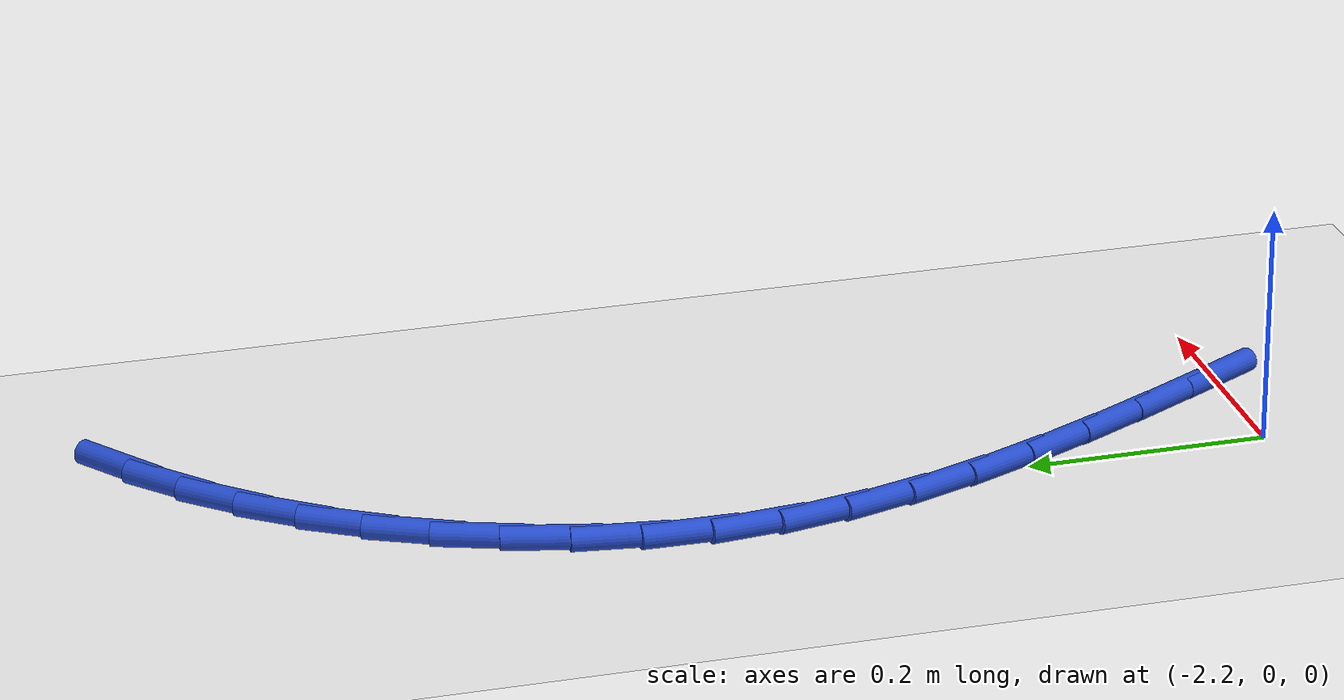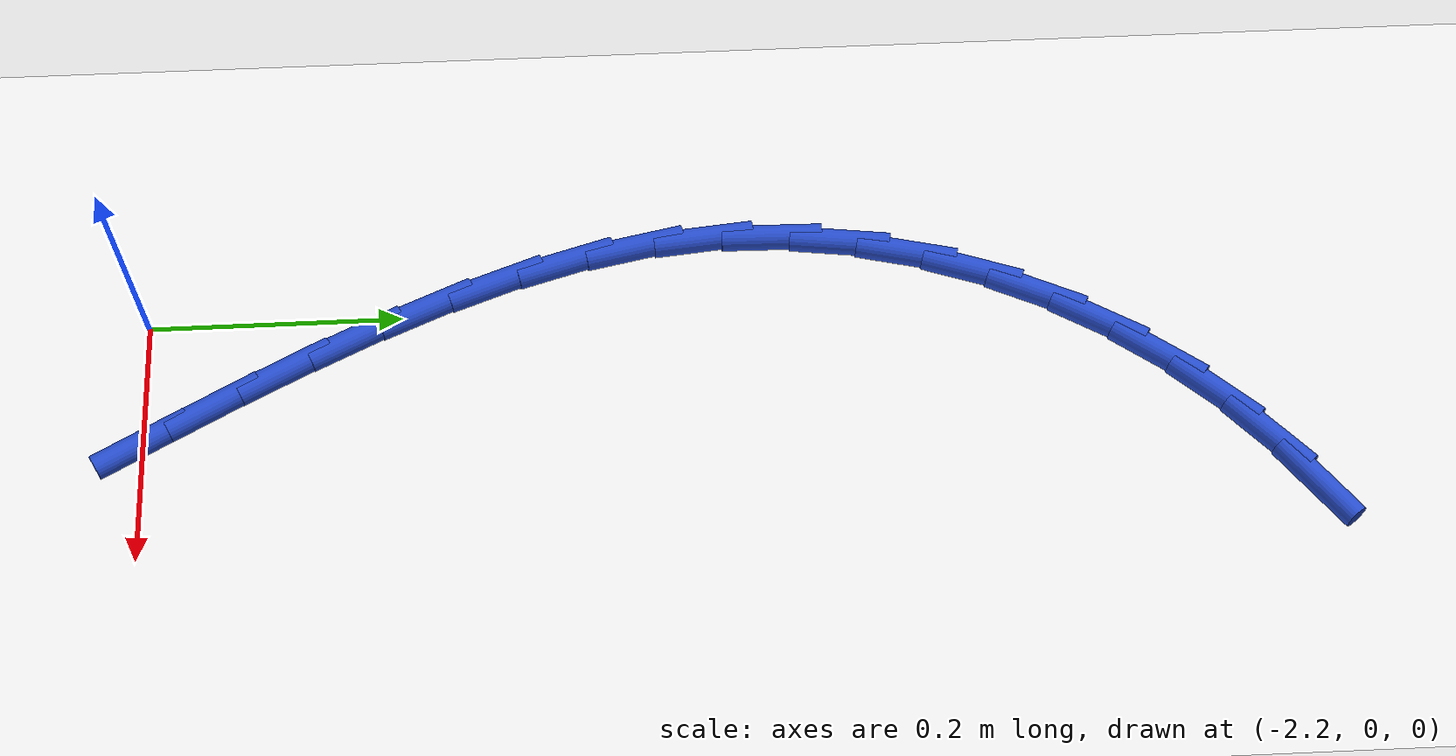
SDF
<sdf version="1.6">
 <world name="default">
  <model name="ground_plane">
   <static>1</static>
   <link name="link">
    <collision name="collision">
     <geometry><plane><normal>0 0 1</normal><size>100 100</size></plane></geometry>
     <surface><friction><ode><mu>100</mu><mu2>50</mu2></ode></friction></surface>
    </collision>
    <visual name="visual">
     <cast_shadows>0</cast_shadows>
     <geometry><plane><normal>0 0 1</normal><size>100 100</size></plane></geometry>
     <material>
      <script><uri>file://media/materials/scripts/gazebo.material</uri><name>Gazebo/WhiteGlow</name></script>
     </material>
    </visual>
   </link>
  </model>
  <model name="line">
   <link name="link_56">
    <pose>-2.022753228169089 0.9019436152568371 0.01 0 1.57 0.6545374058064372</pose>
    <collision name="collision">
     <geometry><cylinder><radius>0.01</radius><length>0.08</length></cylinder></geometry>
    </collision>
    <visual name="visual">
     <material>
      <script><name>Gazebo/Blue</name><uri>file://media/materials/scripts/gazebo.material</uri></script>
     </material>
     <geometry><cylinder><radius>0.01</radius><length>0.08</length></cylinder></geometry>
    </visual>
   </link>
   <link name="link_57">
    <pose>-2.064736371474297 0.8697262191346495 0.01 0 1.57 0.7544801730021004</pose>
    <collision name="collision">
     <geometry><cylinder><radius>0.01</radius><length>0.08</length></cylinder></geometry>
    </collision>
    <visual name="visual">
     <material>
      <script><name>Gazebo/Blue</name><uri>file://media/materials/scripts/gazebo.material</uri></script>
     </material>
     <geometry><cylinder><radius>0.01</radius><length>0.08</length></cylinder></geometry>
    </visual>
   </link>
   <link name="link_58">
    <pose>-2.103519589529325 0.8332699949542457 0.01 0 1.57 0.8518880456477844</pose>
    <collision name="collision">
     <geometry><cylinder><radius>0.01</radius><length>0.08</length></cylinder></geometry>
    </collision>
    <visual name="visual">
     <material>
      <script><name>Gazebo/Blue</name><uri>file://media/materials/scripts/gazebo.material</uri></script>
     </material>
     <geometry><cylinder><radius>0.01</radius><length>0.08</length></cylinder></geometry>
    </visual>
   </link>
   <link name="link_59">
    <pose>-2.1387551025939016 0.793007197550972 0.01 0 1.57 0.9479619852513224</pose>
    <collision name="collision">
     <geometry><cylinder><radius>0.01</radius><length>0.08</length></cylinder></geometry>
    </collision>
    <visual name="visual">
     <material>
      <script><name>Gazebo/Blue</name><uri>file://media/materials/scripts/gazebo.material</uri></script>
     </material>
     <geometry><cylinder><radius>0.01</radius><length>0.08</length></cylinder></geometry>
    </visual>
   </link>
   <link name="link_60">
    <pose>-2.17009513092776 0.7493700817601747 0.01 0 1.57 1.043914846331548</pose>
    <collision name="collision">
     <geometry><cylinder><radius>0.01</radius><length>0.08</length></cylinder></geometry>
    </collision>
    <visual name="visual">
     <material>
      <script><name>Gazebo/Blue</name><uri>file://media/materials/scripts/gazebo.material</uri></script>
     </material>
     <geometry><cylinder><radius>0.01</radius><length>0.08</length></cylinder></geometry>
    </visual>
   </link>
   <link name="link_61">
    <pose>-2.1971918947906293 0.7027909024171997 0.01 0 1.57 1.140922942183426</pose>
    <collision name="collision">
     <geometry><cylinder><radius>0.01</radius><length>0.08</length></cylinder></geometry>
    </collision>
    <visual name="visual">
     <material>
      <script><name>Gazebo/Blue</name><uri>file://media/materials/scripts/gazebo.material</uri></script>
     </material>
     <geometry><cylinder><radius>0.01</radius><length>0.08</length></cylinder></geometry>
    </visual>
   </link>
   <link name="link_62">
    <pose>-2.2196976144422416 0.6537019143573927 0.01 0 1.57 1.2400778924280236</pose>
    <collision name="collision">
     <geometry><cylinder><radius>0.01</radius><length>0.08</length></cylinder></geometry>
    </collision>
    <visual name="visual">
     <material>
      <script><name>Gazebo/Blue</name><uri>file://media/materials/scripts/gazebo.material</uri></script>
     </material>
     <geometry><cylinder><radius>0.01</radius><length>0.08</length></cylinder></geometry>
    </visual>
   </link>
   <link name="link_63">
    <pose>-2.237264510142325 0.6025353724161009 0.01 0 1.57 1.3423271985468213</pose>
    <collision name="collision">
     <geometry><cylinder><radius>0.01</radius><length>0.08</length></cylinder></geometry>
    </collision>
    <visual name="visual">
     <material>
      <script><name>Gazebo/Blue</name><uri>file://media/materials/scripts/gazebo.material</uri></script>
     </material>
     <geometry><cylinder><radius>0.01</radius><length>0.08</length></cylinder></geometry>
    </visual>
   </link>
   <link name="link_64">
    <pose>-2.249544802150613 0.5497235314286699 0.01 0 1.57 1.4483955883428854</pose>
    <collision name="collision">
     <geometry><cylinder><radius>0.01</radius><length>0.08</length></cylinder></geometry>
    </collision>
    <visual name="visual">
     <material>
      <script><name>Gazebo/Blue</name><uri>file://media/materials/scripts/gazebo.material</uri></script>
     </material>
     <geometry><cylinder><radius>0.01</radius><length>0.08</length></cylinder></geometry>
    </visual>
   </link>
   <link name="link_65">
    <pose>-2.256190710726834 0.49569864623044635 0.01 0 1.57 1.5586860305419754</pose>
    <collision name="collision">
     <geometry><cylinder><radius>0.01</radius><length>0.08</length></cylinder></geometry>
    </collision>
    <visual name="visual">
     <material>
      <script><name>Gazebo/Blue</name><uri>file://media/materials/scripts/gazebo.material</uri></script>
     </material>
     <geometry><cylinder><radius>0.01</radius><length>0.08</length></cylinder></geometry>
    </visual>
   </link>
   <link name="link_66">
    <pose>-2.2568544561307196 0.44089297165677593 0.01 0 1.57 -1.4698549438892863</pose>
    <collision name="collision">
     <geometry><cylinder><radius>0.01</radius><length>0.08</length></cylinder></geometry>
    </collision>
    <visual name="visual">
     <material>
      <script><name>Gazebo/Blue</name><uri>file://media/materials/scripts/gazebo.material</uri></script>
     </material>
     <geometry><cylinder><radius>0.01</radius><length>0.08</length></cylinder></geometry>
    </visual>
   </link>
   <link name="link_67">
    <pose>-2.2512659830111943 0.3857175873614582 0.01 0 1.57 -1.3674488302272605</pose>
    <collision name="collision">
     <geometry><cylinder><radius>0.01</radius><length>0.08</length></cylinder></geometry>
    </collision>
    <visual name="visual">
     <material>
      <script><name>Gazebo/Blue</name><uri>file://media/materials/scripts/gazebo.material</uri></script>
     </material>
     <geometry><cylinder><radius>0.01</radius><length>0.08</length></cylinder></geometry>
    </visual>
   </link>
   <link name="link_68">
    <pose>-2.239858009795903 0.33039210977156397 0.01 0 1.57 -1.2824223929628582</pose>
    <collision name="collision">
     <geometry><cylinder><radius>0.01</radius><length>0.08</length></cylinder></geometry>
    </collision>
    <visual name="visual">
     <material>
      <script><name>Gazebo/Blue</name><uri>file://media/materials/scripts/gazebo.material</uri></script>
     </material>
     <geometry><cylinder><radius>0.01</radius><length>0.08</length></cylinder></geometry>
    </visual>
   </link>
   <link name="link_69">
    <pose>-2.2234365605597857 0.2750344521687827 0.01 0 1.57 -1.2136423868926478</pose>
    <collision name="collision">
     <geometry><cylinder><radius>0.01</radius><length>0.08</length></cylinder></geometry>
    </collision>
    <visual name="visual">
     <material>
      <script><name>Gazebo/Blue</name><uri>file://media/materials/scripts/gazebo.material</uri></script>
     </material>
     <geometry><cylinder><radius>0.01</radius><length>0.08</length></cylinder></geometry>
    </visual>
   </link>
   <link name="link_70">
    <pose>-2.202811103179798 0.21976158960764275 0.01 0 1.57 -1.1595082617390093</pose>
    <collision name="collision">
     <geometry><cylinder><radius>0.01</radius><length>0.08</length></cylinder></geometry>
    </collision>
    <visual name="visual">
     <material>
      <script><name>Gazebo/Blue</name><uri>file://media/materials/scripts/gazebo.material</uri></script>
     </material>
     <geometry><cylinder><radius>0.01</radius><length>0.08</length></cylinder></geometry>
    </visual>
   </link>
   <link name="link_71">
    <pose>-2.1787911055329037 0.16469049714267245 0.01 0 1.57 -1.1184788472070968</pose>
    <collision name="collision">
     <geometry><cylinder><radius>0.01</radius><length>0.08</length></cylinder></geometry>
    </collision>
    <visual name="visual">
     <material>
      <script><name>Gazebo/Blue</name><uri>file://media/materials/scripts/gazebo.material</uri></script>
     </material>
     <geometry><cylinder><radius>0.01</radius><length>0.08</length></cylinder></geometry>
    </visual>
   </link>
   <link name="link_72">
    <pose>-2.1521860354960616 0.10993814982840097 0.01 0 1.57 -1.0893077389851333</pose>
    <collision name="collision">
     <geometry><cylinder><radius>0.01</radius><length>0.08</length></cylinder></geometry>
    </collision>
    <visual name="visual">
     <material>
      <script><name>Gazebo/Blue</name><uri>file://media/materials/scripts/gazebo.material</uri></script>
     </material>
     <geometry><cylinder><radius>0.01</radius><length>0.08</length></cylinder></geometry>
    </visual>
   </link>
   <link name="link_73">
    <pose>-2.1238053609462315 0.05562152271935651 0.01 0 1.57 -1.0711481891812829</pose>
    <collision name="collision">
     <geometry><cylinder><radius>0.01</radius><length>0.08</length></cylinder></geometry>
    </collision>
    <visual name="visual">
     <material>
      <script><name>Gazebo/Blue</name><uri>file://media/materials/scripts/gazebo.material</uri></script>
     </material>
     <geometry><cylinder><radius>0.01</radius><length>0.08</length></cylinder></geometry>
    </visual>
   </link>
   <link name="link_74">
    <pose>-2.0944585497603736 0.0018575908700675 0.01 0 1.57 -1.063601859633921</pose>
    <collision name="collision">
     <geometry><cylinder><radius>0.01</radius><length>0.08</length></cylinder></geometry>
    </collision>
    <visual name="visual">
     <material>
      <script><name>Gazebo/Blue</name><uri>file://media/materials/scripts/gazebo.material</uri></script>
     </material>
     <geometry><cylinder><radius>0.01</radius><length>0.08</length></cylinder></geometry>
    </visual>
   </link>
  </model>
 </world>
</sdf>
